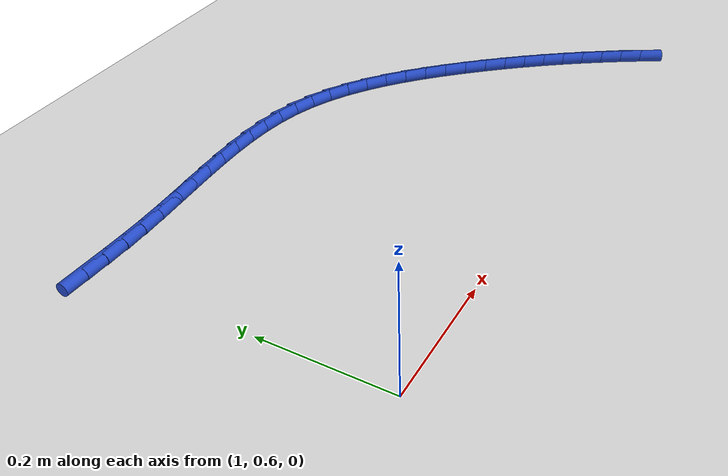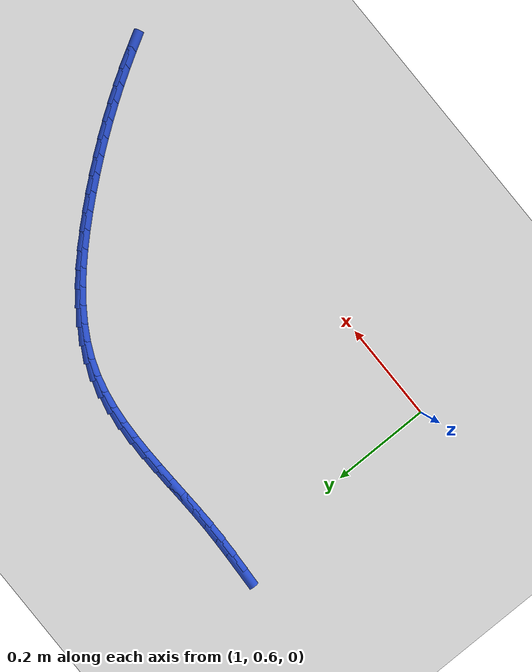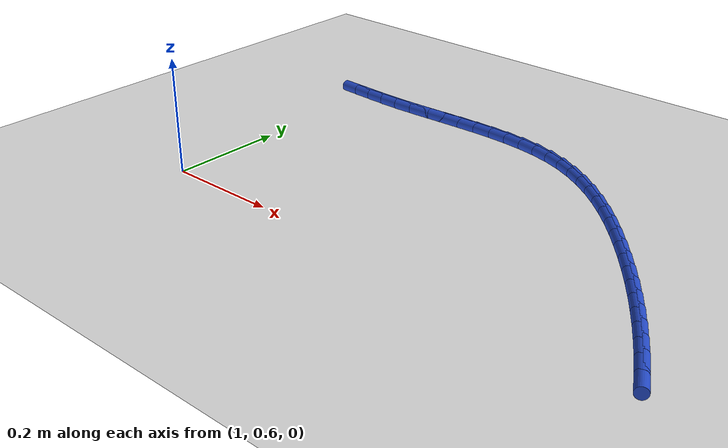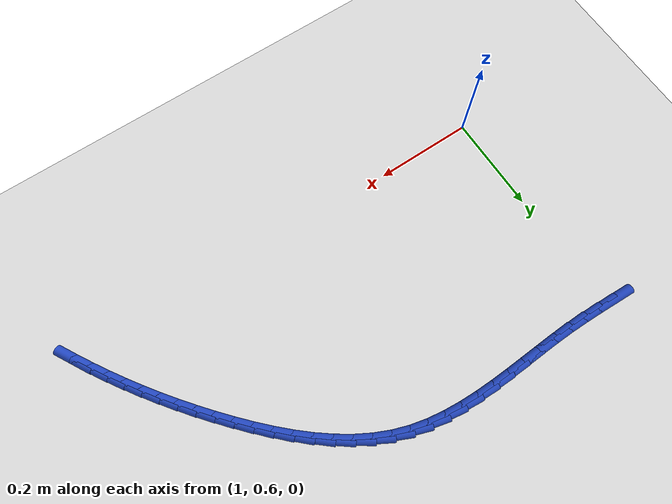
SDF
<sdf version="1.6">
 <world name="default">
  <model name="ground_plane">
   <static>1</static>
   <link name="link">
    <collision name="collision">
     <geometry><plane><normal>0 0 1</normal><size>100 100</size></plane></geometry>
     <surface><friction><ode><mu>100</mu><mu2>50</mu2></ode></friction></surface>
    </collision>
    <visual name="visual">
     <cast_shadows>0</cast_shadows>
     <geometry><plane><normal>0 0 1</normal><size>100 100</size></plane></geometry>
     <material>
      <script><uri>file://media/materials/scripts/gazebo.material</uri><name>Gazebo/WhiteGlow</name></script>
     </material>
    </visual>
   </link>
  </model>
  <model name="line">
   <link name="link_46">
    <pose>0.9859385829001164 1.0535737601789557 0.01 0 1.57 -0.04589038742514017</pose>
    <collision name="collision">
     <geometry><cylinder><radius>0.01</radius><length>0.08</length></cylinder></geometry>
    </collision>
    <visual name="visual">
     <material>
      <script><name>Gazebo/Blue</name><uri>file://media/materials/scripts/gazebo.material</uri></script>
     </material>
     <geometry><cylinder><radius>0.01</radius><length>0.08</length></cylinder></geometry>
    </visual>
   </link>
   <link name="link_47">
    <pose>1.0208647944899616 1.0519698567381635 0.01 0 1.57 -0.03400329453485656</pose>
    <collision name="collision">
     <geometry><cylinder><radius>0.01</radius><length>0.08</length></cylinder></geometry>
    </collision>
    <visual name="visual">
     <material>
      <script><name>Gazebo/Blue</name><uri>file://media/materials/scripts/gazebo.material</uri></script>
     </material>
     <geometry><cylinder><radius>0.01</radius><length>0.08</length></cylinder></geometry>
    </visual>
   </link>
   <link name="link_48">
    <pose>1.0558862983329584 1.0507785510537846 0.01 0 1.57 -0.011873396888905794</pose>
    <collision name="collision">
     <geometry><cylinder><radius>0.01</radius><length>0.08</length></cylinder></geometry>
    </collision>
    <visual name="visual">
     <material>
      <script><name>Gazebo/Blue</name><uri>file://media/materials/scripts/gazebo.material</uri></script>
     </material>
     <geometry><cylinder><radius>0.01</radius><length>0.08</length></cylinder></geometry>
    </visual>
   </link>
   <link name="link_49">
    <pose>1.0911653308390044 1.0503596494135559 0.01 0 1.57 0.01660576008801761</pose>
    <collision name="collision">
     <geometry><cylinder><radius>0.01</radius><length>0.08</length></cylinder></geometry>
    </collision>
    <visual name="visual">
     <material>
      <script><name>Gazebo/Blue</name><uri>file://media/materials/scripts/gazebo.material</uri></script>
     </material>
     <geometry><cylinder><radius>0.01</radius><length>0.08</length></cylinder></geometry>
    </visual>
   </link>
   <link name="link_50">
    <pose>1.1268173604423681 1.0509517328873903 0.01 0 1.57 0.036641509146488796</pose>
    <collision name="collision">
     <geometry><cylinder><radius>0.01</radius><length>0.08</length></cylinder></geometry>
    </collision>
    <visual name="visual">
     <material>
      <script><name>Gazebo/Blue</name><uri>file://media/materials/scripts/gazebo.material</uri></script>
     </material>
     <geometry><cylinder><radius>0.01</radius><length>0.08</length></cylinder></geometry>
    </visual>
   </link>
   <link name="link_51">
    <pose>1.1627556113981965 1.0522691542813485 0.01 0 1.57 0.04474015202123307</pose>
    <collision name="collision">
     <geometry><cylinder><radius>0.01</radius><length>0.08</length></cylinder></geometry>
    </collision>
    <visual name="visual">
     <material>
      <script><name>Gazebo/Blue</name><uri>file://media/materials/scripts/gazebo.material</uri></script>
     </material>
     <geometry><cylinder><radius>0.01</radius><length>0.08</length></cylinder></geometry>
    </visual>
   </link>
   <link name="link_52">
    <pose>1.1988386511875166 1.053884592975197 0.01 0 1.57 0.041159382962036015</pose>
    <collision name="collision">
     <geometry><cylinder><radius>0.01</radius><length>0.08</length></cylinder></geometry>
    </collision>
    <visual name="visual">
     <material>
      <script><name>Gazebo/Blue</name><uri>file://media/materials/scripts/gazebo.material</uri></script>
     </material>
     <geometry><cylinder><radius>0.01</radius><length>0.08</length></cylinder></geometry>
    </visual>
   </link>
   <link name="link_53">
    <pose>1.234925046403441 1.0553707260471774 0.01 0 1.57 0.02585093092150613</pose>
    <collision name="collision">
     <geometry><cylinder><radius>0.01</radius><length>0.08</length></cylinder></geometry>
    </collision>
    <visual name="visual">
     <material>
      <script><name>Gazebo/Blue</name><uri>file://media/materials/scripts/gazebo.material</uri></script>
     </material>
     <geometry><cylinder><radius>0.01</radius><length>0.08</length></cylinder></geometry>
    </visual>
   </link>
   <link name="link_54">
    <pose>1.2708733636390825 1.056300230575531 0.01 0 1.57 -0.0015264568983469004</pose>
    <collision name="collision">
     <geometry><cylinder><radius>0.01</radius><length>0.08</length></cylinder></geometry>
    </collision>
    <visual name="visual">
     <material>
      <script><name>Gazebo/Blue</name><uri>file://media/materials/scripts/gazebo.material</uri></script>
     </material>
     <geometry><cylinder><radius>0.01</radius><length>0.08</length></cylinder></geometry>
    </visual>
   </link>
   <link name="link_55">
    <pose>1.3065421694875534 1.0562457836384993 0.01 0 1.57 -0.04155932670738052</pose>
    <collision name="collision">
     <geometry><cylinder><radius>0.01</radius><length>0.08</length></cylinder></geometry>
    </collision>
    <visual name="visual">
     <material>
      <script><name>Gazebo/Blue</name><uri>file://media/materials/scripts/gazebo.material</uri></script>
     </material>
     <geometry><cylinder><radius>0.01</radius><length>0.08</length></cylinder></geometry>
    </visual>
   </link>
   <link name="link_56">
    <pose>1.3417900305419659 1.0547800623143235 0.01 0 1.57 -0.09497854373912477</pose>
    <collision name="collision">
     <geometry><cylinder><radius>0.01</radius><length>0.08</length></cylinder></geometry>
    </collision>
    <visual name="visual">
     <material>
      <script><name>Gazebo/Blue</name><uri>file://media/materials/scripts/gazebo.material</uri></script>
     </material>
     <geometry><cylinder><radius>0.01</radius><length>0.08</length></cylinder></geometry>
    </visual>
   </link>
   <link name="link_57">
    <pose>1.3764755133954334 1.0514757436812454 0.01 0 1.57 -0.16247400914917456</pose>
    <collision name="collision">
     <geometry><cylinder><radius>0.01</radius><length>0.08</length></cylinder></geometry>
    </collision>
    <visual name="visual">
     <material>
      <script><name>Gazebo/Blue</name><uri>file://media/materials/scripts/gazebo.material</uri></script>
     </material>
     <geometry><cylinder><radius>0.01</radius><length>0.08</length></cylinder></geometry>
    </visual>
   </link>
   <link name="link_58">
    <pose>1.4104571846410678 1.0459055048175063 0.01 0 1.57 -0.24439277694548167</pose>
    <collision name="collision">
     <geometry><cylinder><radius>0.01</radius><length>0.08</length></cylinder></geometry>
    </collision>
    <visual name="visual">
     <material>
      <script><name>Gazebo/Blue</name><uri>file://media/materials/scripts/gazebo.material</uri></script>
     </material>
     <geometry><cylinder><radius>0.01</radius><length>0.08</length></cylinder></geometry>
    </visual>
   </link>
   <link name="link_59">
    <pose>1.4435936108719818 1.0376420228013477 0.01 0 1.57 -0.33973283939593607</pose>
    <collision name="collision">
     <geometry><cylinder><radius>0.01</radius><length>0.08</length></cylinder></geometry>
    </collision>
    <visual name="visual">
     <material>
      <script><name>Gazebo/Blue</name><uri>file://media/materials/scripts/gazebo.material</uri></script>
     </material>
     <geometry><cylinder><radius>0.01</radius><length>0.08</length></cylinder></geometry>
    </visual>
   </link>
   <link name="link_60">
    <pose>1.475747580032831 1.0262776423936242 0.01 0 1.57 -0.4357259390207915</pose>
    <collision name="collision">
     <geometry><cylinder><radius>0.01</radius><length>0.08</length></cylinder></geometry>
    </collision>
    <visual name="visual">
     <material>
      <script><name>Gazebo/Blue</name><uri>file://media/materials/scripts/gazebo.material</uri></script>
     </material>
     <geometry><cylinder><radius>0.01</radius><length>0.08</length></cylinder></geometry>
    </visual>
   </link>
   <link name="link_61">
    <pose>1.5068646769039717 1.01179046677153 0.01 0 1.57 -0.5211237562498636</pose>
    <collision name="collision">
     <geometry><cylinder><radius>0.01</radius><length>0.08</length></cylinder></geometry>
    </collision>
    <visual name="visual">
     <material>
      <script><name>Gazebo/Blue</name><uri>file://media/materials/scripts/gazebo.material</uri></script>
     </material>
     <geometry><cylinder><radius>0.01</radius><length>0.08</length></cylinder></geometry>
    </visual>
   </link>
   <link name="link_62">
    <pose>1.536966043668255 0.9945106283134046 0.01 0 1.57 -0.5956475045686934</pose>
    <collision name="collision">
     <geometry><cylinder><radius>0.01</radius><length>0.08</length></cylinder></geometry>
    </collision>
    <visual name="visual">
     <material>
      <script><name>Gazebo/Blue</name><uri>file://media/materials/scripts/gazebo.material</uri></script>
     </material>
     <geometry><cylinder><radius>0.01</radius><length>0.08</length></cylinder></geometry>
    </visual>
   </link>
   <link name="link_63">
    <pose>1.5660755921725842 0.9747811635286325 0.01 0 1.57 -0.6598932752715758</pose>
    <collision name="collision">
     <geometry><cylinder><radius>0.01</radius><length>0.08</length></cylinder></geometry>
    </collision>
    <visual name="visual">
     <material>
      <script><name>Gazebo/Blue</name><uri>file://media/materials/scripts/gazebo.material</uri></script>
     </material>
     <geometry><cylinder><radius>0.01</radius><length>0.08</length></cylinder></geometry>
    </visual>
   </link>
   <link name="link_64">
    <pose>1.5942172342638603 0.9529451089265967 0.01 0 1.57 -0.7146848854726908</pose>
    <collision name="collision">
     <geometry><cylinder><radius>0.01</radius><length>0.08</length></cylinder></geometry>
    </collision>
    <visual name="visual">
     <material>
      <script><name>Gazebo/Blue</name><uri>file://media/materials/scripts/gazebo.material</uri></script>
     </material>
     <geometry><cylinder><radius>0.01</radius><length>0.08</length></cylinder></geometry>
    </visual>
   </link>
   <link name="link_65">
    <pose>1.6214148817889869 0.9293455010166821 0.01 0 1.57 -0.7608904643502499</pose>
    <collision name="collision">
     <geometry><cylinder><radius>0.01</radius><length>0.08</length></cylinder></geometry>
    </collision>
    <visual name="visual">
     <material>
      <script><name>Gazebo/Blue</name><uri>file://media/materials/scripts/gazebo.material</uri></script>
     </material>
     <geometry><cylinder><radius>0.01</radius><length>0.08</length></cylinder></geometry>
    </visual>
   </link>
   <link name="link_66">
    <pose>1.6476924465948652 0.9043253763082731 0.01 0 1.57 -0.7993099502157914</pose>
    <collision name="collision">
     <geometry><cylinder><radius>0.01</radius><length>0.08</length></cylinder></geometry>
    </collision>
    <visual name="visual">
     <material>
      <script><name>Gazebo/Blue</name><uri>file://media/materials/scripts/gazebo.material</uri></script>
     </material>
     <geometry><cylinder><radius>0.01</radius><length>0.08</length></cylinder></geometry>
    </visual>
   </link>
   <link name="link_67">
    <pose>1.673073840528398 0.8782277713107528 0.01 0 1.57 -0.8306119778116339</pose>
    <collision name="collision">
     <geometry><cylinder><radius>0.01</radius><length>0.08</length></cylinder></geometry>
    </collision>
    <visual name="visual">
     <material>
      <script><name>Gazebo/Blue</name><uri>file://media/materials/scripts/gazebo.material</uri></script>
     </material>
     <geometry><cylinder><radius>0.01</radius><length>0.08</length></cylinder></geometry>
    </visual>
   </link>
   <link name="link_68">
    <pose>1.6975829754364877 0.851395722533506 0.01 0 1.57 -0.8556168227659977</pose>
    <collision name="collision">
     <geometry><cylinder><radius>0.01</radius><length>0.08</length></cylinder></geometry>
    </collision>
    <visual name="visual">
     <material>
      <script><name>Gazebo/Blue</name><uri>file://media/materials/scripts/gazebo.material</uri></script>
     </material>
     <geometry><cylinder><radius>0.01</radius><length>0.08</length></cylinder></geometry>
    </visual>
   </link>
   <link name="link_69">
    <pose>1.7212439045062655 0.8241546360581018 0.01 0 1.57 -0.8783148447744218</pose>
    <collision name="collision">
     <geometry><cylinder><radius>0.01</radius><length>0.08</length></cylinder></geometry>
    </collision>
    <visual name="visual">
     <material>
      <script><name>Gazebo/Blue</name><uri>file://media/materials/scripts/gazebo.material</uri></script>
     </material>
     <geometry><cylinder><radius>0.01</radius><length>0.08</length></cylinder></geometry>
    </visual>
   </link>
   <link name="link_70">
    <pose>1.7440823445247164 0.7966224046680949 0.01 0 1.57 -0.9011069313705637</pose>
    <collision name="collision">
     <geometry><cylinder><radius>0.01</radius><length>0.08</length></cylinder></geometry>
    </collision>
    <visual name="visual">
     <material>
      <script><name>Gazebo/Blue</name><uri>file://media/materials/scripts/gazebo.material</uri></script>
     </material>
     <geometry><cylinder><radius>0.01</radius><length>0.08</length></cylinder></geometry>
    </visual>
   </link>
   <link name="link_71">
    <pose>1.766125095393632 0.7687818161067946 0.01 0 1.57 -0.9239516656726985</pose>
    <collision name="collision">
     <geometry><cylinder><radius>0.01</radius><length>0.08</length></cylinder></geometry>
    </collision>
    <visual name="visual">
     <material>
      <script><name>Gazebo/Blue</name><uri>file://media/materials/scripts/gazebo.material</uri></script>
     </material>
     <geometry><cylinder><radius>0.01</radius><length>0.08</length></cylinder></geometry>
    </visual>
   </link>
   <link name="link_72">
    <pose>1.7873989755132862 0.7406133506626811 0.01 0 1.57 -0.9467638716363038</pose>
    <collision name="collision">
     <geometry><cylinder><radius>0.01</radius><length>0.08</length></cylinder></geometry>
    </collision>
    <visual name="visual">
     <material>
      <script><name>Gazebo/Blue</name><uri>file://media/materials/scripts/gazebo.material</uri></script>
     </material>
     <geometry><cylinder><radius>0.01</radius><length>0.08</length></cylinder></geometry>
    </visual>
   </link>
   <link name="link_73">
    <pose>1.8079308032839527 0.7120974886242336 0.01 0 1.57 -0.9694574497336543</pose>
    <collision name="collision">
     <geometry><cylinder><radius>0.01</radius><length>0.08</length></cylinder></geometry>
    </collision>
    <visual name="visual">
     <material>
      <script><name>Gazebo/Blue</name><uri>file://media/materials/scripts/gazebo.material</uri></script>
     </material>
     <geometry><cylinder><radius>0.01</radius><length>0.08</length></cylinder></geometry>
    </visual>
   </link>
   <link name="link_74">
    <pose>1.827747397105907 0.6832147102799321 0.01 0 1.57 -0.9919467065152932</pose>
    <collision name="collision">
     <geometry><cylinder><radius>0.01</radius><length>0.08</length></cylinder></geometry>
    </collision>
    <visual name="visual">
     <material>
      <script><name>Gazebo/Blue</name><uri>file://media/materials/scripts/gazebo.material</uri></script>
     </material>
     <geometry><cylinder><radius>0.01</radius><length>0.08</length></cylinder></geometry>
    </visual>
   </link>
   <link name="link_75">
    <pose>1.846875575379424 0.6539454959182563 0.01 0 1.57 -1.0141476750609535</pose>
    <collision name="collision">
     <geometry><cylinder><radius>0.01</radius><length>0.08</length></cylinder></geometry>
    </collision>
    <visual name="visual">
     <material>
      <script><name>Gazebo/Blue</name><uri>file://media/materials/scripts/gazebo.material</uri></script>
     </material>
     <geometry><cylinder><radius>0.01</radius><length>0.08</length></cylinder></geometry>
    </visual>
   </link>
   <link name="link_76">
    <pose>1.8653421565047765 0.6242703258276864 0.01 0 1.57 -1.0359793774852097</pose>
    <collision name="collision">
     <geometry><cylinder><radius>0.01</radius><length>0.08</length></cylinder></geometry>
    </collision>
    <visual name="visual">
     <material>
      <script><name>Gazebo/Blue</name><uri>file://media/materials/scripts/gazebo.material</uri></script>
     </material>
     <geometry><cylinder><radius>0.01</radius><length>0.08</length></cylinder></geometry>
    </visual>
   </link>
   <link name="link_77">
    <pose>1.8831739588822405 0.5941696802967016 0.01 0 1.57 -1.0573649845796955</pose>
    <collision name="collision">
     <geometry><cylinder><radius>0.01</radius><length>0.08</length></cylinder></geometry>
    </collision>
    <visual name="visual">
     <material>
      <script><name>Gazebo/Blue</name><uri>file://media/materials/scripts/gazebo.material</uri></script>
     </material>
     <geometry><cylinder><radius>0.01</radius><length>0.08</length></cylinder></geometry>
    </visual>
   </link>
  </model>
 </world>
</sdf>
